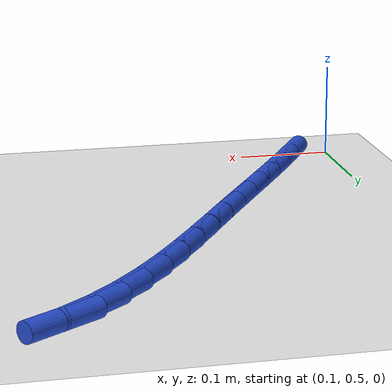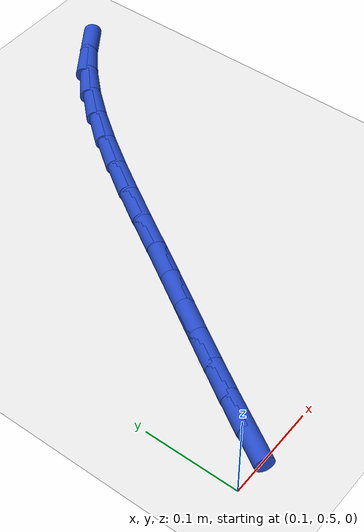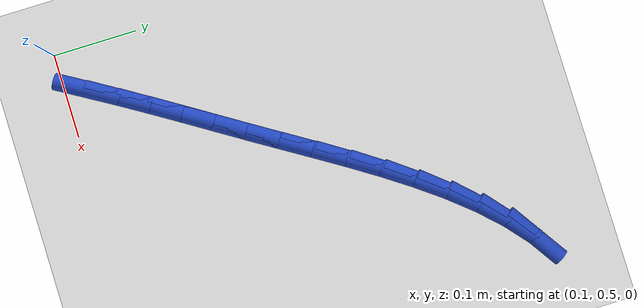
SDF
<sdf version="1.6">
 <world name="default">
  <model name="ground_plane">
   <static>1</static>
   <link name="link">
    <collision name="collision">
     <geometry><plane><normal>0 0 1</normal><size>100 100</size></plane></geometry>
     <surface><friction><ode><mu>100</mu><mu2>50</mu2></ode></friction></surface>
    </collision>
    <visual name="visual">
     <cast_shadows>0</cast_shadows>
     <geometry><plane><normal>0 0 1</normal><size>100 100</size></plane></geometry>
     <material>
      <script><uri>file://media/materials/scripts/gazebo.material</uri><name>Gazebo/WhiteGlow</name></script>
     </material>
    </visual>
   </link>
  </model>
  <model name="line">
   <link name="link_15">
    <pose>0.15099055730713767 0.5278616063872809 0.01 0 1.57 1.0330471737703797</pose>
    <collision name="collision">
     <geometry><cylinder><radius>0.01</radius><length>0.08</length></cylinder></geometry>
    </collision>
    <visual name="visual">
     <material>
      <script><name>Gazebo/Blue</name><uri>file://media/materials/scripts/gazebo.material</uri></script>
     </material>
     <geometry><cylinder><radius>0.01</radius><length>0.08</length></cylinder></geometry>
    </visual>
   </link>
   <link name="link_16">
    <pose>0.16993976099101357 0.5596356267168211 0.01 0 1.57 1.0195648011040894</pose>
    <collision name="collision">
     <geometry><cylinder><radius>0.01</radius><length>0.08</length></cylinder></geometry>
    </collision>
    <visual name="visual">
     <material>
      <script><name>Gazebo/Blue</name><uri>file://media/materials/scripts/gazebo.material</uri></script>
     </material>
     <geometry><cylinder><radius>0.01</radius><length>0.08</length></cylinder></geometry>
    </visual>
   </link>
   <link name="link_17">
    <pose>0.18955874577406304 0.5915467433777352 0.01 0 1.57 1.0105976096031455</pose>
    <collision name="collision">
     <geometry><cylinder><radius>0.01</radius><length>0.08</length></cylinder></geometry>
    </collision>
    <visual name="visual">
     <material>
      <script><name>Gazebo/Blue</name><uri>file://media/materials/scripts/gazebo.material</uri></script>
     </material>
     <geometry><cylinder><radius>0.01</radius><length>0.08</length></cylinder></geometry>
    </visual>
   </link>
   <link name="link_18">
    <pose>0.20975588567670603 0.6237474607622294 0.01 0 1.57 1.0060109094418814</pose>
    <collision name="collision">
     <geometry><cylinder><radius>0.01</radius><length>0.08</length></cylinder></geometry>
    </collision>
    <visual name="visual">
     <material>
      <script><name>Gazebo/Blue</name><uri>file://media/materials/scripts/gazebo.material</uri></script>
     </material>
     <geometry><cylinder><radius>0.01</radius><length>0.08</length></cylinder></geometry>
    </visual>
   </link>
   <link name="link_19">
    <pose>0.23043955471936228 0.6563902832625095 0.01 0 1.57 1.0056216467435408</pose>
    <collision name="collision">
     <geometry><cylinder><radius>0.01</radius><length>0.08</length></cylinder></geometry>
    </collision>
    <visual name="visual">
     <material>
      <script><name>Gazebo/Blue</name><uri>file://media/materials/scripts/gazebo.material</uri></script>
     </material>
     <geometry><cylinder><radius>0.01</radius><length>0.08</length></cylinder></geometry>
    </visual>
   </link>
   <link name="link_20">
    <pose>0.25151812692245207 0.6896277152707824 0.01 0 1.57 1.0092076376877115</pose>
    <collision name="collision">
     <geometry><cylinder><radius>0.01</radius><length>0.08</length></cylinder></geometry>
    </collision>
    <visual name="visual">
     <material>
      <script><name>Gazebo/Blue</name><uri>file://media/materials/scripts/gazebo.material</uri></script>
     </material>
     <geometry><cylinder><radius>0.01</radius><length>0.08</length></cylinder></geometry>
    </visual>
   </link>
   <link name="link_21">
    <pose>0.2728999876396685 0.7236122255249691 0.01 0 1.57 1.013492906386332</pose>
    <collision name="collision">
     <geometry><cylinder><radius>0.01</radius><length>0.08</length></cylinder></geometry>
    </collision>
    <visual name="visual">
     <material>
      <script><name>Gazebo/Blue</name><uri>file://media/materials/scripts/gazebo.material</uri></script>
     </material>
     <geometry><cylinder><radius>0.01</radius><length>0.08</length></cylinder></geometry>
    </visual>
   </link>
   <link name="link_22">
    <pose>0.2945429002526329 0.7583409403275332 0.01 0 1.57 1.0086024646270246</pose>
    <collision name="collision">
     <geometry><cylinder><radius>0.01</radius><length>0.08</length></cylinder></geometry>
    </collision>
    <visual name="visual">
     <material>
      <script><name>Gazebo/Blue</name><uri>file://media/materials/scripts/gazebo.material</uri></script>
     </material>
     <geometry><cylinder><radius>0.01</radius><length>0.08</length></cylinder></geometry>
    </visual>
   </link>
   <link name="link_23">
    <pose>0.31656718799494277 0.7932995754533597 0.01 0 1.57 0.9926048124117438</pose>
    <collision name="collision">
     <geometry><cylinder><radius>0.01</radius><length>0.08</length></cylinder></geometry>
    </collision>
    <visual name="visual">
     <material>
      <script><name>Gazebo/Blue</name><uri>file://media/materials/scripts/gazebo.material</uri></script>
     </material>
     <geometry><cylinder><radius>0.01</radius><length>0.08</length></cylinder></geometry>
    </visual>
   </link>
   <link name="link_24">
    <pose>0.3391265781076931 0.8278687582382754 0.01 0 1.57 0.9649671843474599</pose>
    <collision name="collision">
     <geometry><cylinder><radius>0.01</radius><length>0.08</length></cylinder></geometry>
    </collision>
    <visual name="visual">
     <material>
      <script><name>Gazebo/Blue</name><uri>file://media/materials/scripts/gazebo.material</uri></script>
     </material>
     <geometry><cylinder><radius>0.01</radius><length>0.08</length></cylinder></geometry>
    </visual>
   </link>
   <link name="link_25">
    <pose>0.36237479783197885 0.8614291160181077 0.01 0 1.57 0.9244621094450041</pose>
    <collision name="collision">
     <geometry><cylinder><radius>0.01</radius><length>0.08</length></cylinder></geometry>
    </collision>
    <visual name="visual">
     <material>
      <script><name>Gazebo/Blue</name><uri>file://media/materials/scripts/gazebo.material</uri></script>
     </material>
     <geometry><cylinder><radius>0.01</radius><length>0.08</length></cylinder></geometry>
    </visual>
   </link>
   <link name="link_26">
    <pose>0.3864655744088949 0.8933612761286835 0.01 0 1.57 0.8691417891271033</pose>
    <collision name="collision">
     <geometry><cylinder><radius>0.01</radius><length>0.08</length></cylinder></geometry>
    </collision>
    <visual name="visual">
     <material>
      <script><name>Gazebo/Blue</name><uri>file://media/materials/scripts/gazebo.material</uri></script>
     </material>
     <geometry><cylinder><radius>0.01</radius><length>0.08</length></cylinder></geometry>
    </visual>
   </link>
   <link name="link_27">
    <pose>0.4115526350795362 0.9230458659058305 0.01 0 1.57 0.7963406698289079</pose>
    <collision name="collision">
     <geometry><cylinder><radius>0.01</radius><length>0.08</length></cylinder></geometry>
    </collision>
    <visual name="visual">
     <material>
      <script><name>Gazebo/Blue</name><uri>file://media/materials/scripts/gazebo.material</uri></script>
     </material>
     <geometry><cylinder><radius>0.01</radius><length>0.08</length></cylinder></geometry>
    </visual>
   </link>
   <link name="link_28">
    <pose>0.43778970708499776 0.9498635126853752 0.01 0 1.57 0.7028399843261701</pose>
    <collision name="collision">
     <geometry><cylinder><radius>0.01</radius><length>0.08</length></cylinder></geometry>
    </collision>
    <visual name="visual">
     <material>
      <script><name>Gazebo/Blue</name><uri>file://media/materials/scripts/gazebo.material</uri></script>
     </material>
     <geometry><cylinder><radius>0.01</radius><length>0.08</length></cylinder></geometry>
    </visual>
   </link>
   <link name="link_29">
    <pose>0.4653305176663744 0.973194843803145 0.01 0 1.57 0.5854547069448987</pose>
    <collision name="collision">
     <geometry><cylinder><radius>0.01</radius><length>0.08</length></cylinder></geometry>
    </collision>
    <visual name="visual">
     <material>
      <script><name>Gazebo/Blue</name><uri>file://media/materials/scripts/gazebo.material</uri></script>
     </material>
     <geometry><cylinder><radius>0.01</radius><length>0.08</length></cylinder></geometry>
    </visual>
   </link>
  </model>
 </world>
</sdf>
